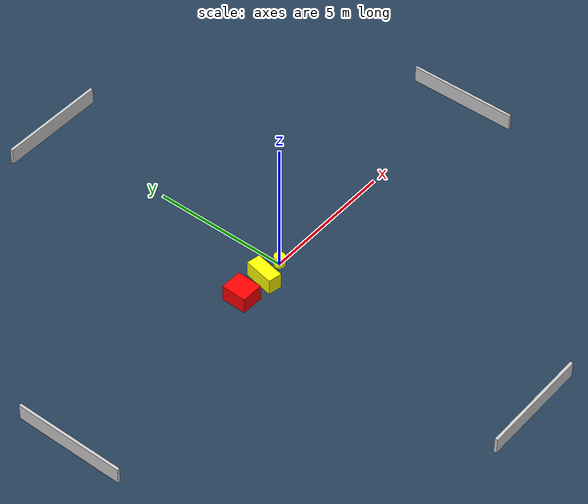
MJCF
<?xml version="1.0" ?>
<mujoco model="generated_environment">
  <option timestep="0.01" integrator="RK4" cone="elliptic"/>
  <default>
    <geom density="1"/>
  </default>
  <asset>
    <texture builtin="gradient" height="3072" name="skybox" rgb1="0.3 0.5 0.7" rgb2="0 0 0" type="skybox" width="512"/>
    <texture builtin="checker" height="300" name="groundplane" rgb1="0.2 0.3 0.4" rgb2="0.1 0.2 0.3" type="2d" width="300"/>
    <material name="groundplane" reflectance="0.2" texrepeat="5 5" texture="groundplane"/>
  </asset>
  <worldbody>
    <light dir="0 0 -1" directional="true" pos="0 0 1.5"/>
    <geom condim="3" friction="0.5 0.005 0.001" material="groundplane" name="floor" pos="0 0 0" size="0 0 0.05" type="plane"/>
    <body name="walls">
      <geom name="wall_1" condim="4" pos="-10.0 0.0 0.3" rgba="0.800000011920929 0.800000011920929 0.800000011920929 1.0" size="0.05 2.0 0.3" type="box"/>
      <geom name="wall_2" condim="4" pos="10.0 0.0 0.3" rgba="0.800000011920929 0.800000011920929 0.800000011920929 1.0" size="0.05 2.0 0.3" type="box"/>
      <geom name="wall_3" condim="4" pos="0.0 -10.0 0.3" rgba="0.800000011920929 0.800000011920929 0.800000011920929 1.0" size="2.0 0.05 0.3" type="box"/>
      <geom name="wall_4" condim="4" pos="0.0 10.0 0.3" rgba="0.800000011920929 0.800000011920929 0.800000011920929 1.0" size="2.0 0.05 0.3" type="box"/>
    </body>
    <body name="robot">
      <joint name="joint_x" type="slide" pos="0 0 0" axis="1 0 0"/>
      <joint name="joint_y" type="slide" pos="0 0 0" axis="0 1 0"/>
      <geom name="robot" type="cylinder" pos="0.0 0.0 0.2" size="0.2 0.2 0.0" mass="5.0" friction="1.0 0.005 0.0001" condim="4" rgba="1.0 1.0 0.0 1.0"/>
    </body>
    <body name="obstacle_1_movable">
      <geom name="obstacle_1_movable" condim="4" pos="-0.8852115023995136 -0.08876385767045648 0.3" euler="0 0 169.00729548749976" friction="0.0 0.005 0.001" rgba="1.0 1.0 0.0 1.0" size="0.25364599780666397 0.5480082341907295 0.3" type="box" mass="0.1"/>
      <joint type="free"/>
    </body>
    <body name="obstacle_2_static">
      <geom name="obstacle_2_static" condim="4" pos="-1.9522610311485251 -0.036714446895679285 0.3" euler="0 0 88.44722318763839" friction="0.0 0.005 0.001" rgba="1.0 0.0 0.0 1.0" size="0.4598507752188725 0.40263827919204387 0.3" type="box"/>
    </body>
  </worldbody>
  <actuator>
    <motor name="actuator_x" joint="joint_x" gear="1" ctrlrange="-1 1"/>
    <motor name="actuator_y" joint="joint_y" gear="1" ctrlrange="-1 1"/>
  </actuator>
</mujoco>
